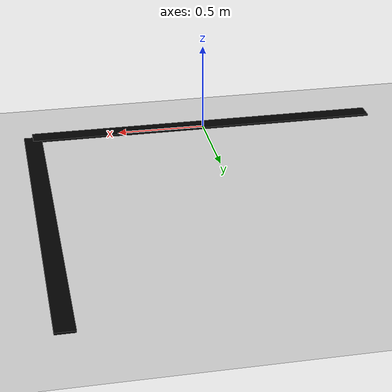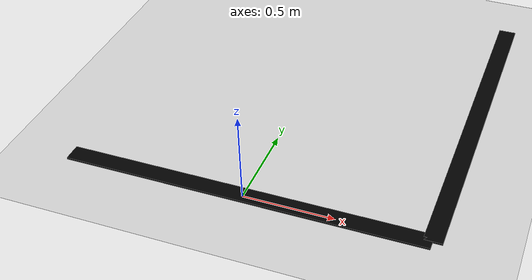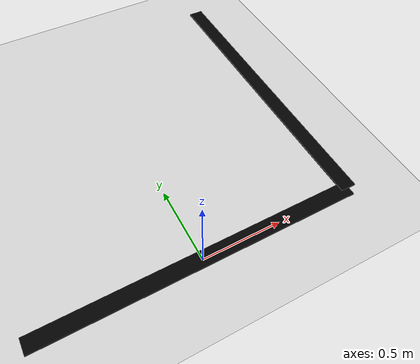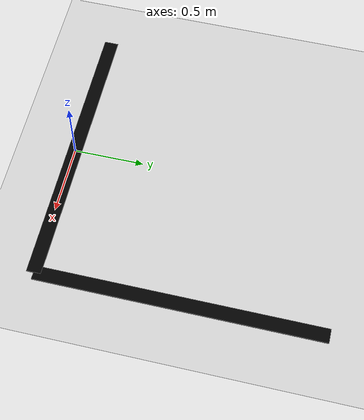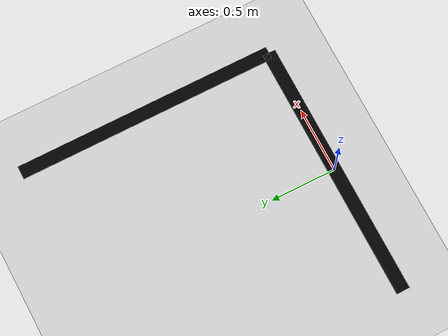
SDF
<?xml version="1.0" ?>
<sdf version="1.6">
  <world name="line_world">

    <!-- ROS2 Gazebo plugin (needed for spawn_entity service) -->
    <plugin name="gazebo_ros_factory" filename="libgazebo_ros_factory.so"/>

    <!-- Light -->
    <include>
      <uri>model://sun</uri>
    </include>

    <!-- Ground plane -->
    <include>
      <uri>model://ground_plane</uri>
    </include>

    <!-- Black line (L-shape) -->
    <model name="black_line_box1">
      <static>true</static>
      <link name="link">
        <visual name="visual">
          <geometry>
            <box>
              <size>2 0.1 0.01</size> <!-- horizontal line -->
            </box>
          </geometry>
          <material>
            <ambient>0 0 0 1</ambient>
            <diffuse>0 0 0 1</diffuse>
          </material>
        </visual>
        <pose>0 0 0.01 0 0 0</pose>
      </link>
    </model>

    <model name="black_line_box2">
      <static>true</static>
      <link name="link">
        <visual name="visual">
          <geometry>
            <box>
              <size>0.1 2 0.01</size> <!-- vertical line -->
            </box>
          </geometry>
          <material>
            <ambient>0 0 0 1</ambient>
            <diffuse>0 0 0 1</diffuse>
          </material>
        </visual>
        <pose>1 1 0.01 0 0 0</pose>
      </link>
    </model>

  </world>
</sdf>
